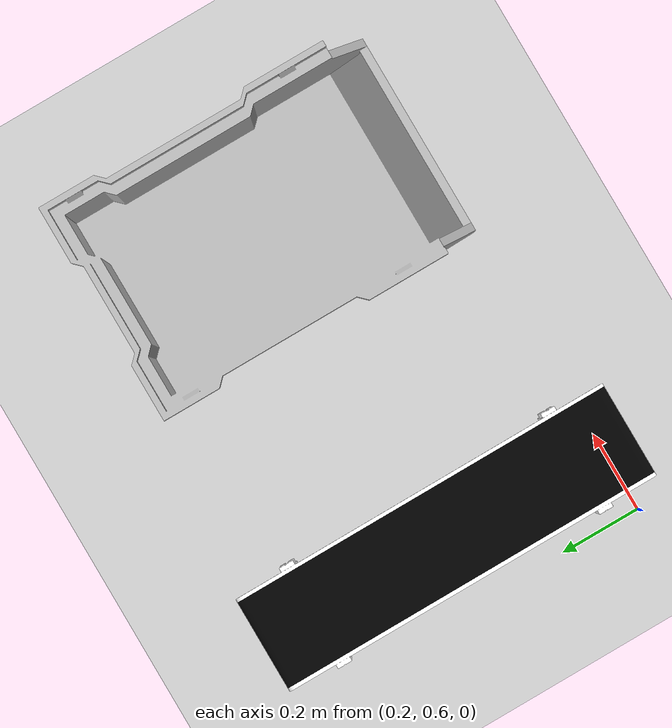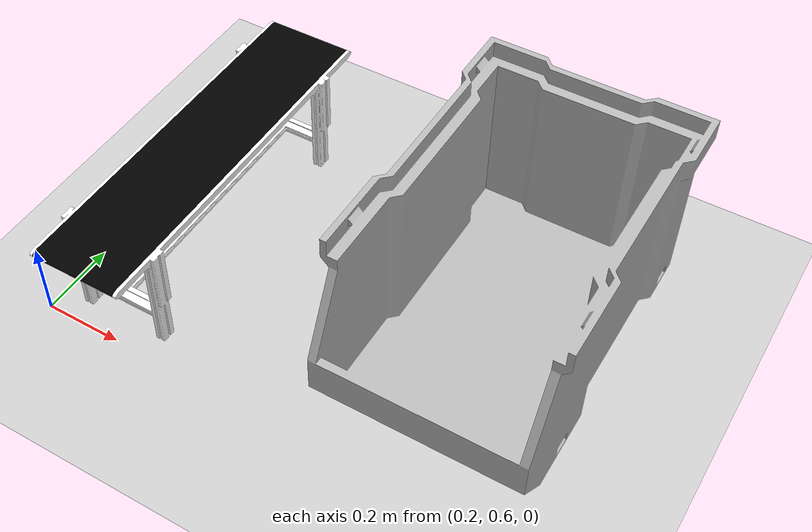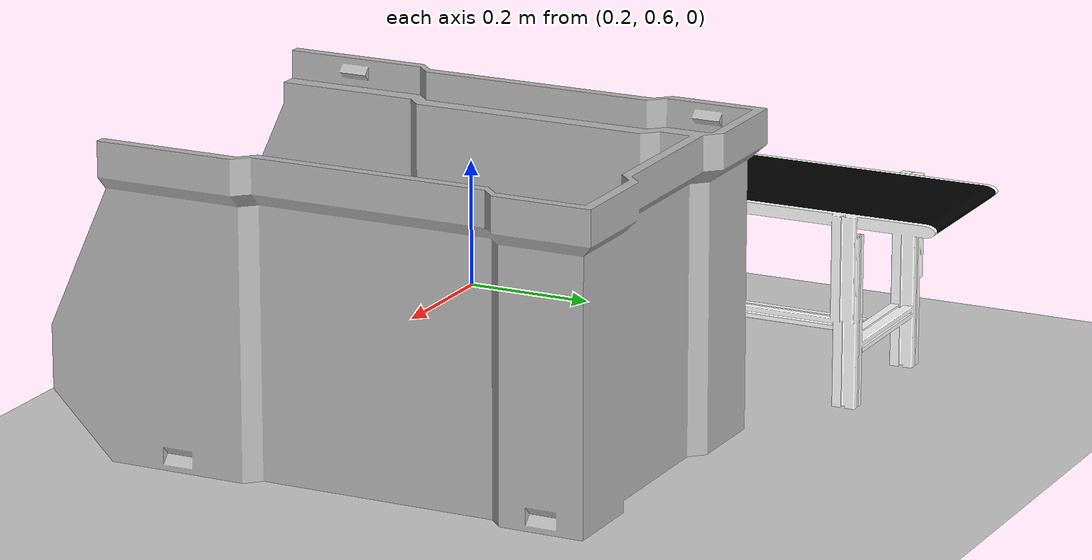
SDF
<sdf version="1.7">
 <world name="default">
  <light name="sun" type="directional">
   <pose>0 0 10 0 -0 0</pose>
   <diffuse>0.8 0.8 0.8 1</diffuse>
   <specular>0.2 0.2 0.2 1</specular>
   <attenuation>
    <range>1000</range>
    <constant>0.9</constant>
    <linear>0.01</linear>
    <quadratic>0.001</quadratic>
   </attenuation>
   <direction>-0.5 0.1 -0.9</direction>
   <spot><inner_angle>0</inner_angle><outer_angle>0</outer_angle><falloff>0</falloff></spot>
  </light>
  <model name="ground_plane">
   <static>1</static>
   <link name="link">
    <collision name="collision">
     <geometry><plane><normal>0 0 1</normal><size>100 100</size></plane></geometry>
     <surface><friction><ode><mu>100</mu><mu2>50</mu2></ode></friction></surface>
    </collision>
    <visual name="visual">
     <cast_shadows>0</cast_shadows>
     <geometry><plane><normal>0 0 1</normal><size>100 100</size></plane></geometry>
     <material>
      <script><uri>file://media/materials/scripts/gazebo.material</uri><name>Gazebo/Grey</name></script>
     </material>
    </visual>
   </link>
  </model>
  <gravity>0 0 -9.8</gravity>
  <magnetic_field>6e-06 2.3e-05 -4.2e-05</magnetic_field>
  <atmosphere type="adiabatic"/>
  <physics type="ode">
   <max_step_size>0.001</max_step_size>
   <real_time_factor>1</real_time_factor>
   <real_time_update_rate>1000</real_time_update_rate>
  </physics>
  <scene><ambient>0.4 0.4 0.4 1</ambient><background>0.7 0.7 0.7 1</background><shadows>1</shadows></scene>
  <audio><device>default</device></audio>
  <spherical_coordinates>
   <surface_model>EARTH_WGS84</surface_model>
   <latitude_deg>0</latitude_deg>
   <longitude_deg>0</longitude_deg>
   <elevation>0</elevation>
   <heading_deg>0</heading_deg>
  </spherical_coordinates>
  <model name="conveyor_belt">
   <model name="conveyorbelt_fixed">
    <static>1</static>
    <link name="belt_visual">
     <visual name="visual">
      <geometry>
       <mesh><scale>0.565 0.796 0.391</scale><uri>model://conveyor_belt/meshes/conveyor_belt.dae</uri></mesh>
      </geometry>
     </visual>
     <collision name="collision">
      <geometry>
       <mesh><scale>0.565 0.796 0.391</scale><uri>model://conveyor_belt/meshes/conveyor_belt.dae</uri></mesh>
      </geometry>
      <origin xyz="0.0 0.0 0" rpy="0.0 0.0 0.0"/>
     </collision>
    </link>
   </model>
   <model name="conveyorbelt_moving">
    <allow_auto_disable>0</allow_auto_disable>
    <static>0</static>
    <pose>0 0 0.29 0 -0 0</pose>
    <link name="belt_moving">
     <inertial>
      <mass>100</mass>
      <inertia><ixx>0.1</ixx><ixy>0.1</ixy><ixz>0.1</ixz><iyy>0.1</iyy><iyz>0.1</iyz><izz>0.1</izz></inertia>
     </inertial>
     <collision name="belt_collision">
      <geometry><box><size>0.24 0.955 0.001</size></box></geometry>
      <surface>
       <friction>
        <ode><mu>2</mu><mu2>2</mu2></ode>
        <torsional><coefficient>1000</coefficient><patch_radius>0.1</patch_radius></torsional>
       </friction>
      </surface>
     </collision>
    </link>
   </model>
   <joint name="belt_joint" type="prismatic">
    <parent>conveyorbelt_fixed::belt_visual</parent>
    <child>conveyorbelt_moving::belt_moving</child>
    <axis>
     <xyz expressed_in="__model__">0 1 0</xyz>
     <limit><lower>0</lower><upper>0.01</upper></limit>
     <dynamics><spring_reference>0</spring_reference><spring_stiffness>0</spring_stiffness></dynamics>
    </axis>
   </joint>
   <plugin name="ros2_conveyorbelt_plugin" filename="libros2_conveyorbelt_plugin.so">
    <max_velocity>1.0</max_velocity>
    <publish_rate>1000</publish_rate>
   </plugin>
   <pose>0.377423 1.01518 0 0 -0 0</pose>
  </model>
  <model name="mini_stacking_box2">
   <static>0</static>
   <link name="link">
    <inertial>
     <mass>1</mass>
     <inertia>
      <ixx>0.07155</ixx>
      <iyy>0.041175</iyy>
      <izz>0.078975</izz>
      <ixy>0</ixy>
      <ixz>0</ixz>
      <iyz>0</iyz>
     </inertia>
    </inertial>
    <visual name="visual">
     <geometry>
      <mesh><uri>model://mini_stacking_box2/meshes/mini_stacking_box2.dae</uri><scale>1 1 1</scale></mesh>
     </geometry>
     <cast_shadows>0</cast_shadows>
    </visual>
    <collision name="col_bottom">
     <pose>0 0 -0.27 0 -0 0</pose>
     <geometry><box><size>0.5 0.77 0.01</size></box></geometry>
    </collision>
   </link>
   <pose>1.18724 1.05747 0.275 0 -0 0</pose>
  </model>
 </world>
</sdf>
